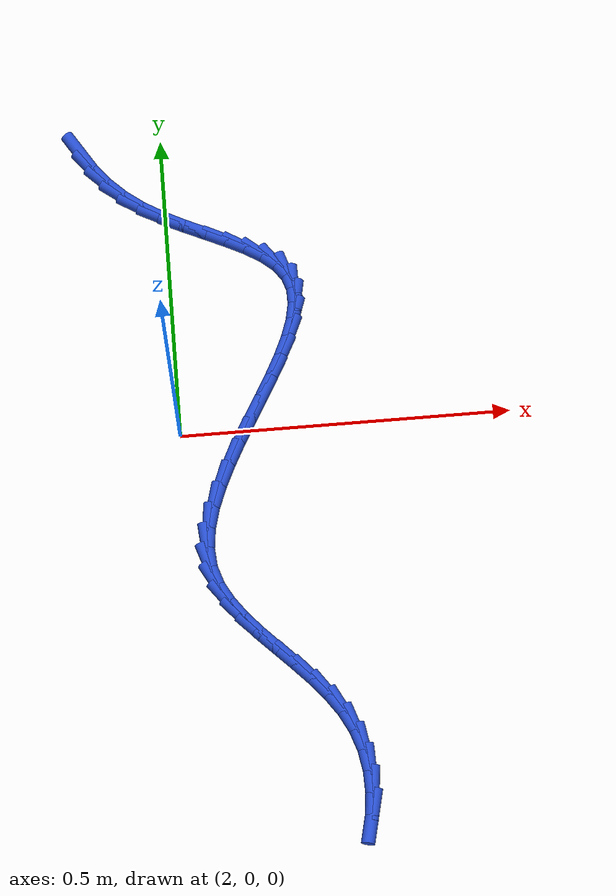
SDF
<sdf version="1.6">
 <world name="default">
  <model name="ground_plane">
   <static>1</static>
   <link name="link">
    <collision name="collision">
     <geometry><plane><normal>0 0 1</normal><size>100 100</size></plane></geometry>
     <surface><friction><ode><mu>100</mu><mu2>50</mu2></ode></friction></surface>
    </collision>
    <visual name="visual">
     <cast_shadows>0</cast_shadows>
     <geometry><plane><normal>0 0 1</normal><size>100 100</size></plane></geometry>
     <material>
      <script><uri>file://media/materials/scripts/gazebo.material</uri><name>Gazebo/WhiteGlow</name></script>
     </material>
    </visual>
   </link>
  </model>
  <model name="line">
   <link name="link_105">
    <pose>1.8743017535755828 0.48379966288590687 0.01 0 1.57 -1.028012458483488</pose>
    <collision name="collision">
     <geometry><cylinder><radius>0.01</radius><length>0.08</length></cylinder></geometry>
    </collision>
    <visual name="visual">
     <material>
      <script><name>Gazebo/Blue</name><uri>file://media/materials/scripts/gazebo.material</uri></script>
     </material>
     <geometry><cylinder><radius>0.01</radius><length>0.08</length></cylinder></geometry>
    </visual>
   </link>
   <link name="link_106">
    <pose>1.8916041638660035 0.45511625218724194 0.01 0 1.57 -0.9095731124286077</pose>
    <collision name="collision">
     <geometry><cylinder><radius>0.01</radius><length>0.08</length></cylinder></geometry>
    </collision>
    <visual name="visual">
     <material>
      <script><name>Gazebo/Blue</name><uri>file://media/materials/scripts/gazebo.material</uri></script>
     </material>
     <geometry><cylinder><radius>0.01</radius><length>0.08</length></cylinder></geometry>
    </visual>
   </link>
   <link name="link_107">
    <pose>1.9123256826870105 0.42848419521143255 0.01 0 1.57 -0.7880934431658343</pose>
    <collision name="collision">
     <geometry><cylinder><radius>0.01</radius><length>0.08</length></cylinder></geometry>
    </collision>
    <visual name="visual">
     <material>
      <script><name>Gazebo/Blue</name><uri>file://media/materials/scripts/gazebo.material</uri></script>
     </material>
     <geometry><cylinder><radius>0.01</radius><length>0.08</length></cylinder></geometry>
    </visual>
   </link>
   <link name="link_108">
    <pose>1.9364775545569057 0.4042017790688466 0.01 0 1.57 -0.665065474845498</pose>
    <collision name="collision">
     <geometry><cylinder><radius>0.01</radius><length>0.08</length></cylinder></geometry>
    </collision>
    <visual name="visual">
     <material>
      <script><name>Gazebo/Blue</name><uri>file://media/materials/scripts/gazebo.material</uri></script>
     </material>
     <geometry><cylinder><radius>0.01</radius><length>0.08</length></cylinder></geometry>
    </visual>
   </link>
   <link name="link_109">
    <pose>1.9640671977234576 0.38256450140403103 0.01 0 1.57 -0.5560782969182861</pose>
    <collision name="collision">
     <geometry><cylinder><radius>0.01</radius><length>0.08</length></cylinder></geometry>
    </collision>
    <visual name="visual">
     <material>
      <script><name>Gazebo/Blue</name><uri>file://media/materials/scripts/gazebo.material</uri></script>
     </material>
     <geometry><cylinder><radius>0.01</radius><length>0.08</length></cylinder></geometry>
    </visual>
   </link>
   <link name="link_110">
    <pose>1.9946640554654906 0.36354856299121674 0.01 0 1.57 -0.48471975028562275</pose>
    <collision name="collision">
     <geometry><cylinder><radius>0.01</radius><length>0.08</length></cylinder></geometry>
    </collision>
    <visual name="visual">
     <material>
      <script><name>Gazebo/Blue</name><uri>file://media/materials/scripts/gazebo.material</uri></script>
     </material>
     <geometry><cylinder><radius>0.01</radius><length>0.08</length></cylinder></geometry>
    </visual>
   </link>
   <link name="link_111">
    <pose>2.027000085803578 0.3465196127675315 0.01 0 1.57 -0.4485883997433366</pose>
    <collision name="collision">
     <geometry><cylinder><radius>0.01</radius><length>0.08</length></cylinder></geometry>
    </collision>
    <visual name="visual">
     <material>
      <script><name>Gazebo/Blue</name><uri>file://media/materials/scripts/gazebo.material</uri></script>
     </material>
     <geometry><cylinder><radius>0.01</radius><length>0.08</length></cylinder></geometry>
    </visual>
   </link>
   <link name="link_112">
    <pose>2.059712832158266 0.3307744685988347 0.01 0 1.57 -0.44586785717381633</pose>
    <collision name="collision">
     <geometry><cylinder><radius>0.01</radius><length>0.08</length></cylinder></geometry>
    </collision>
    <visual name="visual">
     <material>
      <script><name>Gazebo/Blue</name><uri>file://media/materials/scripts/gazebo.material</uri></script>
     </material>
     <geometry><cylinder><radius>0.01</radius><length>0.08</length></cylinder></geometry>
    </visual>
   </link>
   <link name="link_113">
    <pose>2.0914398379501002 0.31560994835098577 0.01 0 1.57 -0.4797898111456051</pose>
    <collision name="collision">
     <geometry><cylinder><radius>0.01</radius><length>0.08</length></cylinder></geometry>
    </collision>
    <visual name="visual">
     <material>
      <script><name>Gazebo/Blue</name><uri>file://media/materials/scripts/gazebo.material</uri></script>
     </material>
     <geometry><cylinder><radius>0.01</radius><length>0.08</length></cylinder></geometry>
    </visual>
   </link>
   <link name="link_114">
    <pose>2.1208186465996266 0.30032286988984447 0.01 0 1.57 -0.5605641868642476</pose>
    <collision name="collision">
     <geometry><cylinder><radius>0.01</radius><length>0.08</length></cylinder></geometry>
    </collision>
    <visual name="visual">
     <material>
      <script><name>Gazebo/Blue</name><uri>file://media/materials/scripts/gazebo.material</uri></script>
     </material>
     <geometry><cylinder><radius>0.01</radius><length>0.08</length></cylinder></geometry>
    </visual>
   </link>
   <link name="link_115">
    <pose>2.14648680152739 0.2842100510812702 0.01 0 1.57 -0.7083139769120613</pose>
    <collision name="collision">
     <geometry><cylinder><radius>0.01</radius><length>0.08</length></cylinder></geometry>
    </collision>
    <visual name="visual">
     <material>
      <script><name>Gazebo/Blue</name><uri>file://media/materials/scripts/gazebo.material</uri></script>
     </material>
     <geometry><cylinder><radius>0.01</radius><length>0.08</length></cylinder></geometry>
    </visual>
   </link>
   <link name="link_116">
    <pose>2.167081846153938 0.26656830979112234 0.01 0 1.57 -0.9517301547478714</pose>
    <collision name="collision">
     <geometry><cylinder><radius>0.01</radius><length>0.08</length></cylinder></geometry>
    </collision>
    <visual name="visual">
     <material>
      <script><name>Gazebo/Blue</name><uri>file://media/materials/scripts/gazebo.material</uri></script>
     </material>
     <geometry><cylinder><radius>0.01</radius><length>0.08</length></cylinder></geometry>
    </visual>
   </link>
   <link name="link_117">
    <pose>2.1812418130894584 0.24669467692658828 0.01 0 1.57 -1.2746924014314187</pose>
    <collision name="collision">
     <geometry><cylinder><radius>0.01</radius><length>0.08</length></cylinder></geometry>
    </collision>
    <visual name="visual">
     <material>
      <script><name>Gazebo/Blue</name><uri>file://media/materials/scripts/gazebo.material</uri></script>
     </material>
     <geometry><cylinder><radius>0.01</radius><length>0.08</length></cylinder></geometry>
    </visual>
   </link>
   <link name="link_118">
    <pose>2.188130239061188 0.22411503961927304 0.01 0 1.57 -1.5586214603635238</pose>
    <collision name="collision">
     <geometry><cylinder><radius>0.01</radius><length>0.08</length></cylinder></geometry>
    </collision>
    <visual name="visual">
     <material>
      <script><name>Gazebo/Blue</name><uri>file://media/materials/scripts/gazebo.material</uri></script>
     </material>
     <geometry><cylinder><radius>0.01</radius><length>0.08</length></cylinder></geometry>
    </visual>
   </link>
   <link name="link_119">
    <pose>2.1884357892923543 0.19901947608515672 0.01 0 1.57 1.3785752911165736</pose>
    <collision name="collision">
     <geometry><cylinder><radius>0.01</radius><length>0.08</length></cylinder></geometry>
    </collision>
    <visual name="visual">
     <material>
      <script><name>Gazebo/Blue</name><uri>file://media/materials/scripts/gazebo.material</uri></script>
     </material>
     <geometry><cylinder><radius>0.01</radius><length>0.08</length></cylinder></geometry>
    </visual>
   </link>
   <link name="link_120">
    <pose>2.183122242388217 0.1717178759895609 0.01 0 1.57 1.241780279021087</pose>
    <collision name="collision">
     <geometry><cylinder><radius>0.01</radius><length>0.08</length></cylinder></geometry>
    </collision>
    <visual name="visual">
     <material>
      <script><name>Gazebo/Blue</name><uri>file://media/materials/scripts/gazebo.material</uri></script>
     </material>
     <geometry><cylinder><radius>0.01</radius><length>0.08</length></cylinder></geometry>
    </visual>
   </link>
   <link name="link_121">
    <pose>2.1731533769540343 0.1425201289978062 0.01 0 1.57 1.153151948965687</pose>
    <collision name="collision">
     <geometry><cylinder><radius>0.01</radius><length>0.08</length></cylinder></geometry>
    </collision>
    <visual name="visual">
     <material>
      <script><name>Gazebo/Blue</name><uri>file://media/materials/scripts/gazebo.material</uri></script>
     </material>
     <geometry><cylinder><radius>0.01</radius><length>0.08</length></cylinder></geometry>
    </visual>
   </link>
   <link name="link_122">
    <pose>2.159492971595064 0.11173612477521419 0.01 0 1.57 1.0982560040100642</pose>
    <collision name="collision">
     <geometry><cylinder><radius>0.01</radius><length>0.08</length></cylinder></geometry>
    </collision>
    <visual name="visual">
     <material>
      <script><name>Gazebo/Blue</name><uri>file://media/materials/scripts/gazebo.material</uri></script>
     </material>
     <geometry><cylinder><radius>0.01</radius><length>0.08</length></cylinder></geometry>
    </visual>
   </link>
   <link name="link_123">
    <pose>2.1431048049165646 0.0796757529871062 0.01 0 1.57 1.0682464843721164</pose>
    <collision name="collision">
     <geometry><cylinder><radius>0.01</radius><length>0.08</length></cylinder></geometry>
    </collision>
    <visual name="visual">
     <material>
      <script><name>Gazebo/Blue</name><uri>file://media/materials/scripts/gazebo.material</uri></script>
     </material>
     <geometry><cylinder><radius>0.01</radius><length>0.08</length></cylinder></geometry>
    </visual>
   </link>
   <link name="link_124">
    <pose>2.124952655523793 0.046648903298803536 0.01 0 1.57 1.0582846480723338</pose>
    <collision name="collision">
     <geometry><cylinder><radius>0.01</radius><length>0.08</length></cylinder></geometry>
    </collision>
    <visual name="visual">
     <material>
      <script><name>Gazebo/Blue</name><uri>file://media/materials/scripts/gazebo.material</uri></script>
     </material>
     <geometry><cylinder><radius>0.01</radius><length>0.08</length></cylinder></geometry>
    </visual>
   </link>
   <link name="link_125">
    <pose>2.10600030202201 0.012965465375627504 0.01 0 1.57 1.0663255816538246</pose>
    <collision name="collision">
     <geometry><cylinder><radius>0.01</radius><length>0.08</length></cylinder></geometry>
    </collision>
    <visual name="visual">
     <material>
      <script><name>Gazebo/Blue</name><uri>file://media/materials/scripts/gazebo.material</uri></script>
     </material>
     <geometry><cylinder><radius>0.01</radius><length>0.08</length></cylinder></geometry>
    </visual>
   </link>
   <link name="link_126">
    <pose>2.0872115230164736 -0.021064671117100642 0.01 0 1.57 1.0925113603650778</pose>
    <collision name="collision">
     <geometry><cylinder><radius>0.01</radius><length>0.08</length></cylinder></geometry>
    </collision>
    <visual name="visual">
     <material>
      <script><name>Gazebo/Blue</name><uri>file://media/materials/scripts/gazebo.material</uri></script>
     </material>
     <geometry><cylinder><radius>0.01</radius><length>0.08</length></cylinder></geometry>
    </visual>
   </link>
   <link name="link_127">
    <pose>2.06955009711244 -0.05513161651405958 0.01 0 1.57 1.139044334318314</pose>
    <collision name="collision">
     <geometry><cylinder><radius>0.01</radius><length>0.08</length></cylinder></geometry>
    </collision>
    <visual name="visual">
     <material>
      <script><name>Gazebo/Blue</name><uri>file://media/materials/scripts/gazebo.material</uri></script>
     </material>
     <geometry><cylinder><radius>0.01</radius><length>0.08</length></cylinder></geometry>
    </visual>
   </link>
   <link name="link_128">
    <pose>2.0539798029151695 -0.08892548114992802 0.01 0 1.57 1.2104084594107543</pose>
    <collision name="collision">
     <geometry><cylinder><radius>0.01</radius><length>0.08</length></cylinder></geometry>
    </collision>
    <visual name="visual">
     <material>
      <script><name>Gazebo/Blue</name><uri>file://media/materials/scripts/gazebo.material</uri></script>
     </material>
     <geometry><cylinder><radius>0.01</radius><length>0.08</length></cylinder></geometry>
    </visual>
   </link>
   <link name="link_129">
    <pose>2.0414644190299196 -0.12213637535938465 0.01 0 1.57 1.3137056051336504</pose>
    <collision name="collision">
     <geometry><cylinder><radius>0.01</radius><length>0.08</length></cylinder></geometry>
    </collision>
    <visual name="visual">
     <material>
      <script><name>Gazebo/Blue</name><uri>file://media/materials/scripts/gazebo.material</uri></script>
     </material>
     <geometry><cylinder><radius>0.01</radius><length>0.08</length></cylinder></geometry>
    </visual>
   </link>
   <link name="link_130">
    <pose>2.0329677240619493 -0.15445440947710828 0.01 0 1.57 1.4583307513331434</pose>
    <collision name="collision">
     <geometry><cylinder><radius>0.01</radius><length>0.08</length></cylinder></geometry>
    </collision>
    <visual name="visual">
     <material>
      <script><name>Gazebo/Blue</name><uri>file://media/materials/scripts/gazebo.material</uri></script>
     </material>
     <geometry><cylinder><radius>0.01</radius><length>0.08</length></cylinder></geometry>
    </visual>
   </link>
   <link name="link_131">
    <pose>2.029453496616516 -0.18556969383777744 0.01 0 1.57 -1.4888302770914805</pose>
    <collision name="collision">
     <geometry><cylinder><radius>0.01</radius><length>0.08</length></cylinder></geometry>
    </collision>
    <visual name="visual">
     <material>
      <script><name>Gazebo/Blue</name><uri>file://media/materials/scripts/gazebo.material</uri></script>
     </material>
     <geometry><cylinder><radius>0.01</radius><length>0.08</length></cylinder></geometry>
    </visual>
   </link>
   <link name="link_132">
    <pose>2.0318853609628746 -0.21517238675943515 0.01 0 1.57 -1.262576652219054</pose>
    <collision name="collision">
     <geometry><cylinder><radius>0.01</radius><length>0.08</length></cylinder></geometry>
    </collision>
    <visual name="visual">
     <material>
      <script><name>Gazebo/Blue</name><uri>file://media/materials/scripts/gazebo.material</uri></script>
     </material>
     <geometry><cylinder><radius>0.01</radius><length>0.08</length></cylinder></geometry>
    </visual>
   </link>
   <link name="link_133">
    <pose>2.040774430302602 -0.24309333313147488 0.01 0 1.57 -1.0730434642373332</pose>
    <collision name="collision">
     <geometry><cylinder><radius>0.01</radius><length>0.08</length></cylinder></geometry>
    </collision>
    <visual name="visual">
     <material>
      <script><name>Gazebo/Blue</name><uri>file://media/materials/scripts/gazebo.material</uri></script>
     </material>
     <geometry><cylinder><radius>0.01</radius><length>0.08</length></cylinder></geometry>
    </visual>
   </link>
   <link name="link_134">
    <pose>2.055185011133271 -0.26961319286248653 0.01 0 1.57 -0.9376440734723596</pose>
    <collision name="collision">
     <geometry><cylinder><radius>0.01</radius><length>0.08</length></cylinder></geometry>
    </collision>
    <visual name="visual">
     <material>
      <script><name>Gazebo/Blue</name><uri>file://media/materials/scripts/gazebo.material</uri></script>
     </material>
     <geometry><cylinder><radius>0.01</radius><length>0.08</length></cylinder></geometry>
    </visual>
   </link>
   <link name="link_135">
    <pose>2.0738928658611036 -0.2951023347804566 0.01 0 1.57 -0.8506972248674669</pose>
    <collision name="collision">
     <geometry><cylinder><radius>0.01</radius><length>0.08</length></cylinder></geometry>
    </collision>
    <visual name="visual">
     <material>
      <script><name>Gazebo/Blue</name><uri>file://media/materials/scripts/gazebo.material</uri></script>
     </material>
     <geometry><cylinder><radius>0.01</radius><length>0.08</length></cylinder></geometry>
    </visual>
   </link>
   <link name="link_136">
    <pose>2.095673756892319 -0.31993112771337123 0.01 0 1.57 -0.8042697301090449</pose>
    <collision name="collision">
     <geometry><cylinder><radius>0.01</radius><length>0.08</length></cylinder></geometry>
    </collision>
    <visual name="visual">
     <material>
      <script><name>Gazebo/Blue</name><uri>file://media/materials/scripts/gazebo.material</uri></script>
     </material>
     <geometry><cylinder><radius>0.01</radius><length>0.08</length></cylinder></geometry>
    </visual>
   </link>
   <link name="link_137">
    <pose>2.1193034466331384 -0.34446994048921675 0.01 0 1.57 -0.7928652808189458</pose>
    <collision name="collision">
     <geometry><cylinder><radius>0.01</radius><length>0.08</length></cylinder></geometry>
    </collision>
    <visual name="visual">
     <material>
      <script><name>Gazebo/Blue</name><uri>file://media/materials/scripts/gazebo.material</uri></script>
     </material>
     <geometry><cylinder><radius>0.01</radius><length>0.08</length></cylinder></geometry>
    </visual>
   </link>
   <link name="link_138">
    <pose>2.1435576974897796 -0.3690891419359792 0.01 0 1.57 -0.8144387012648269</pose>
    <collision name="collision">
     <geometry><cylinder><radius>0.01</radius><length>0.08</length></cylinder></geometry>
    </collision>
    <visual name="visual">
     <material>
      <script><name>Gazebo/Blue</name><uri>file://media/materials/scripts/gazebo.material</uri></script>
     </material>
     <geometry><cylinder><radius>0.01</radius><length>0.08</length></cylinder></geometry>
    </visual>
   </link>
   <link name="link_139">
    <pose>2.1672122718684657 -0.3941591008816452 0.01 0 1.57 -0.8702791487341255</pose>
    <collision name="collision">
     <geometry><cylinder><radius>0.01</radius><length>0.08</length></cylinder></geometry>
    </collision>
    <visual name="visual">
     <material>
      <script><name>Gazebo/Blue</name><uri>file://media/materials/scripts/gazebo.material</uri></script>
     </material>
     <geometry><cylinder><radius>0.01</radius><length>0.08</length></cylinder></geometry>
    </visual>
   </link>
   <link name="link_140">
    <pose>2.1890429321754152 -0.42005018615420076 0.01 0 1.57 -0.9644276848569984</pose>
    <collision name="collision">
     <geometry><cylinder><radius>0.01</radius><length>0.08</length></cylinder></geometry>
    </collision>
    <visual name="visual">
     <material>
      <script><name>Gazebo/Blue</name><uri>file://media/materials/scripts/gazebo.material</uri></script>
     </material>
     <geometry><cylinder><radius>0.01</radius><length>0.08</length></cylinder></geometry>
    </visual>
   </link>
   <link name="link_141">
    <pose>2.2078254408168476 -0.44713276658163204 0.01 0 1.57 -1.1010471302241307</pose>
    <collision name="collision">
     <geometry><cylinder><radius>0.01</radius><length>0.08</length></cylinder></geometry>
    </collision>
    <visual name="visual">
     <material>
      <script><name>Gazebo/Blue</name><uri>file://media/materials/scripts/gazebo.material</uri></script>
     </material>
     <geometry><cylinder><radius>0.01</radius><length>0.08</length></cylinder></geometry>
    </visual>
   </link>
   <link name="link_142">
    <pose>2.22236020653574 -0.475764212883288 0.01 0 1.57 -1.2589520594184973</pose>
    <collision name="collision">
     <geometry><cylinder><radius>0.01</radius><length>0.08</length></cylinder></geometry>
    </collision>
    <visual name="visual">
     <material>
      <script><name>Gazebo/Blue</name><uri>file://media/materials/scripts/gazebo.material</uri></script>
     </material>
     <geometry><cylinder><radius>0.01</radius><length>0.08</length></cylinder></geometry>
    </visual>
   </link>
   <link name="link_143">
    <pose>2.2320944396003717 -0.5059607823474668 0.01 0 1.57 -1.410600352730784</pose>
    <collision name="collision">
     <geometry><cylinder><radius>0.01</radius><length>0.08</length></cylinder></geometry>
    </collision>
    <visual name="visual">
     <material>
      <script><name>Gazebo/Blue</name><uri>file://media/materials/scripts/gazebo.material</uri></script>
     </material>
     <geometry><cylinder><radius>0.01</radius><length>0.08</length></cylinder></geometry>
    </visual>
   </link>
   <link name="link_144">
    <pose>2.237169947826298 -0.5373724119257364 0.01 0 1.57 -1.5524215169185613</pose>
    <collision name="collision">
     <geometry><cylinder><radius>0.01</radius><length>0.08</length></cylinder></geometry>
    </collision>
    <visual name="visual">
     <material>
      <script><name>Gazebo/Blue</name><uri>file://media/materials/scripts/gazebo.material</uri></script>
     </material>
     <geometry><cylinder><radius>0.01</radius><length>0.08</length></cylinder></geometry>
    </visual>
   </link>
   <link name="link_145">
    <pose>2.2377627598037693 -0.5696309910459437 0.01 0 1.57 1.4578355011425448</pose>
    <collision name="collision">
     <geometry><cylinder><radius>0.01</radius><length>0.08</length></cylinder></geometry>
    </collision>
    <visual name="visual">
     <material>
      <script><name>Gazebo/Blue</name><uri>file://media/materials/scripts/gazebo.material</uri></script>
     </material>
     <geometry><cylinder><radius>0.01</radius><length>0.08</length></cylinder></geometry>
    </visual>
   </link>
   <link name="link_146">
    <pose>2.2340489041230347 -0.6023684091359385 0.01 0 1.57 1.3363760067067403</pose>
    <collision name="collision">
     <geometry><cylinder><radius>0.01</radius><length>0.08</length></cylinder></geometry>
    </collision>
    <visual name="visual">
     <material>
      <script><name>Gazebo/Blue</name><uri>file://media/materials/scripts/gazebo.material</uri></script>
     </material>
     <geometry><cylinder><radius>0.01</radius><length>0.08</length></cylinder></geometry>
    </visual>
   </link>
  </model>
 </world>
</sdf>
